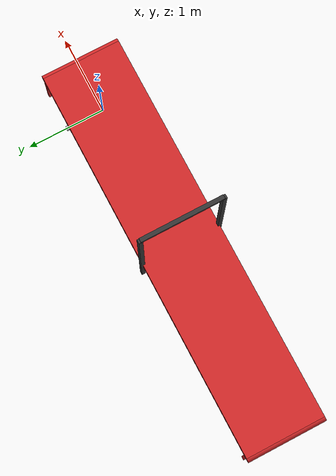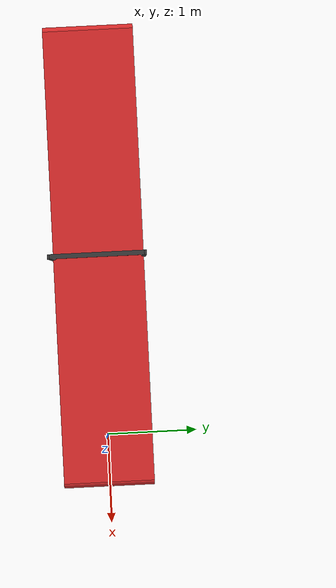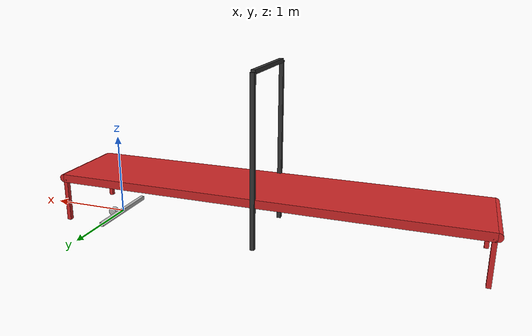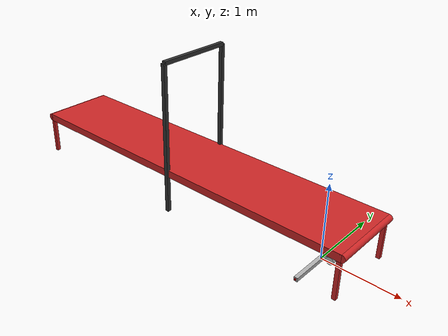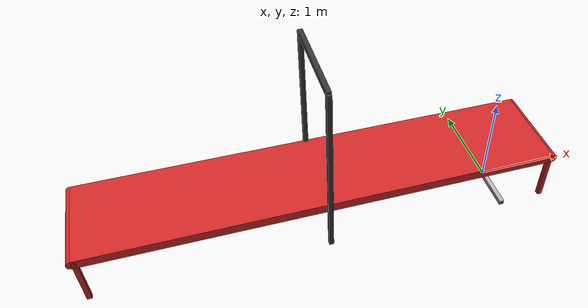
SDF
<sdf version="1.7">
 <world name="warehouse">
  <physics type="ode">
   <max_step_size>0.01</max_step_size>
   <real_time_factor>1.0</real_time_factor>
   <real_time_update_rate>100</real_time_update_rate>
   <max_contacts>20</max_contacts>
  </physics>
  <plugin name="gz::sim::systems::Physics" filename="gz-sim-physics-system"/>
  <plugin name="gz::sim::systems::UserCommands" filename="gz-sim-user-commands-system"/>
  <plugin name="gz::sim::systems::SceneBroadcaster" filename="gz-sim-scene-broadcaster-system"/>
  <plugin name="gz::sim::systems::Contact" filename="gz-sim-contact-system"/>
  <plugin name="gz::sim::systems::ApplyLinkWrench" filename="gz-sim-apply-link-wrench-system"/>
  <plugin name="gz::sim::systems::Sensors" filename="gz-sim-sensors-system">
   <render_engine>ogre2</render_engine>
   <background_color>0.8 0.8 0.8</background_color>
  </plugin>
  <gravity>0 0 -9.8</gravity>
  <scene>
   <ambient>1.0 1.0 1.0</ambient>
   <background>0.8 0.8 0.8</background>
   <shadows>true</shadows>
   <grid>false</grid>
  </scene>
  <light type="directional" name="sun">
   <pose>0 0 10 0 0 0</pose>
   <diffuse>0.8 0.8 0.8 1</diffuse>
   <specular>0.8 0.8 0.8 1</specular>
   <attenuation>
    <range>1000</range>
    <constant>0.9</constant>
    <linear>0.01</linear>
    <quadratic>0.001</quadratic>
   </attenuation>
   <direction>-0.5 0.1 -0.9</direction>
  </light>
  <include><uri>model://textured_conveyor</uri><pose>-2.0 0 0 0 0 0.0</pose></include>
  <include>
   <uri>model://bracket</uri>
   <name>bracket</name>
   <pose degrees="true">-2.0 0 0.0 0 0 90</pose>
   <static>true</static>
  </include>
  <include>
   <uri>model://lidar_3d</uri>
   <name>lidar_3d</name>
   <pose degrees="true" relative_to="bracket::horizontal_bar">0.1 0.1 0 90 0 0</pose>
   <static>false</static>
  </include>
  <joint name="bracket_lidar_joint" type="fixed">
   <parent>bracket::horizontal_bar</parent>
   <child>lidar_3d::link</child>
  </joint>
  <include>
   <uri>model://dual_camera_bar</uri>
   <name>dual_camera_bar</name>
   <pose degrees="true" relative_to="bracket::horizontal_bar">0 0 0 0 0 -90</pose>
   <static>false</static>
  </include>
  <joint name="bracket_to_dual_bar_joint" type="fixed">
   <parent>bracket::horizontal_bar</parent>
   <child>dual_camera_bar::horizontal_bar</child>
  </joint>
  <joint name="left_camera_joint" type="fixed">
   <parent>dual_camera_bar::left_camera_mount</parent>
   <child>left_camera::link</child>
  </joint>
  <joint name="right_camera_joint" type="fixed">
   <parent>dual_camera_bar::right_camera_mount</parent>
   <child>right_camera::link</child>
  </joint>
 </world>
</sdf>

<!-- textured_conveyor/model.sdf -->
<?xml version="1.0" ?>
<sdf version="1.7">
  <model name="textured_conveyor">
    <static>1</static>
    <link name="base_link">
      <pose relative_to="__model__">0 0 0 0 0 0</pose>
      <inertial>
        <mass>1000.0</mass>
        <inertia>
          <ixx>84.16666666666666</ixx>
          <ixy>0</ixy>
          <ixz>0</ixz>
          <iyy>2084.1666666666665</iyy>
          <iyz>1.5e-05</iyz>
          <izz>2166.6666666666665</izz>
        </inertia>
      </inertial>
      <collision name="main_collision">
        <pose relative_to="base_link">0 0 0.55 0 0 0</pose>
        <geometry>
          <box>
            <size>5.0 1.0 0.1</size>
          </box>
        </geometry>
        <surface>
          <friction>
            <ode>
              <mu>0.7</mu>
              <mu2>150</mu2>
              <fdir1>0 1 0</fdir1>
            </ode>
          </friction>
        </surface>
      </collision>
      <visual name="main_visual">
        <pose relative_to="base_link">0 0 0.55 0 0 0</pose>
        <geometry>
          <box>
            <size>5.0 1.0 0.1</size>
          </box>
        </geometry>
        <material>
          <diffuse>1.0 1.0 1.0</diffuse>
          <specular>1.0 1.0 1.0</specular>
          <pbr>
            <metal>
              <albedo_map>model://textured_conveyor/materials/textures/Leather032_1K-PNG_Color.png</albedo_map>
              <normal_map>model://textured_conveyor/materials/textures/Leather032_1K-PNG_NormalDX.png</normal_map>
              <metalness_map>model://textured_conveyor/materials/textures/Leather032_1K-PNG_Color.png</metalness_map>
              <roughness_map>model://textured_conveyor/materials/textures/Leather032_1K-PNG_Roughness.png</roughness_map>
            </metal>
          </pbr>
          <script>
            <uri>model://textured_conveyor/materials/scripts/</uri>
            <uri>model://textured_conveyor/materials/textures/</uri>
            <name>UrbanTile/textured_conveyor_Belt</name>
          </script>
        </material>
      </visual>
      <collision name="collision_1">
        <pose relative_to="base_link">2.5 0 0.55 -1.570796327 0 0</pose>
        <geometry>
          <cylinder>
            <length>1.0</length>
            <radius>0.05</radius>
          </cylinder>
        </geometry>
        <surface>
          <friction>
            <ode>
              <mu>0.7</mu>
              <mu2>150</mu2>
              <fdir1>0 1 0</fdir1>
            </ode>
          </friction>
        </surface>
      </collision>
      <visual name="visual_1">
        <pose relative_to="base_link">2.5 0 0.55 -1.570796327 0 0</pose>
        <geometry>
          <cylinder>
            <length>1.0</length>
            <radius>0.05</radius>
          </cylinder>
        </geometry>
        <material>
          <diffuse>1.0 1.0 1.0</diffuse>
          <specular>1.0 1.0 1.0</specular>
          <pbr>
            <metal>
              <albedo_map>model://textured_conveyor/materials/textures/Metal055A_1K-PNG_Color.png</albedo_map>
              <metalness_map>model://textured_conveyor/materials/textures/Metal055A_1K-PNG_Color.png</metalness_map>
              <roughness_map>model://textured_conveyor/materials/textures/Metal055A_1K-PNG_Roughness.png</roughness_map>
            </metal>
          </pbr>
          <script>
            <uri>model://textured_conveyor/materials/scripts/</uri>
            <uri>model://textured_conveyor/materials/textures/</uri>
            <name>UrbanTile/textured_conveyor_Roller</name>
          </script>
        </material>
      </visual>
      <collision name="collision_2">
        <pose relative_to="base_link">-2.5 0 0.55 -1.570796327 0 0</pose>
        <geometry>
          <cylinder>
            <length>1.0</length>
            <radius>0.05</radius>
          </cylinder>
        </geometry>
        <surface>
          <friction>
            <ode>
              <mu>0.7</mu>
              <mu2>150</mu2>
              <fdir1>0 1 0</fdir1>
            </ode>
          </friction>
        </surface>
      </collision>
      <visual name="visual_2">
        <pose relative_to="base_link">-2.5 0 0.55 -1.570796327 0 0</pose>
        <geometry>
          <cylinder>
            <length>1.0</length>
            <radius>0.05</radius>
          </cylinder>
        </geometry>
        <material>
          <diffuse>1.0 1.0 1.0</diffuse>
          <specular>1.0 1.0 1.0</specular>
          <pbr>
            <metal>
              <albedo_map>model://textured_conveyor/materials/textures/Metal055A_1K-PNG_Color.png</albedo_map>
              <metalness_map>model://textured_conveyor/materials/textures/Metal055A_1K-PNG_Color.png</metalness_map>
              <roughness_map>model://textured_conveyor/materials/textures/Metal055A_1K-PNG_Roughness.png</roughness_map>
            </metal>
          </pbr>
          <script>
            <uri>model://textured_conveyor/materials/scripts/</uri>
            <uri>model://textured_conveyor/materials/textures/</uri>
            <name>UrbanTile/textured_conveyor_Roller</name>
          </script>
        </material>
      </visual>
      <collision name="leg_collision_0">
        <pose relative_to="base_link">2.475 0.475 0.25 0 0 0</pose>
        <geometry>
          <box>
            <size>0.05 0.05 0.5</size>
          </box>
        </geometry>
      </collision>
      <visual name="leg_visual_0">
        <pose relative_to="base_link">2.475 0.475 0.25 0 0 0</pose>
        <geometry>
          <box>
            <size>0.05 0.05 0.5</size>
          </box>
        </geometry>
        <material>
          <diffuse>1.0 1.0 1.0</diffuse>
          <specular>1.0 1.0 1.0</specular>
          <pbr>
            <metal>
              <albedo_map>model://textured_conveyor/materials/textures/Metal055A_1K-PNG_Color.png</albedo_map>
              <metalness_map>model://textured_conveyor/materials/textures/Metal055A_1K-PNG_Color.png</metalness_map>
              <roughness_map>model://textured_conveyor/materials/textures/Metal055A_1K-PNG_Roughness.png</roughness_map>
            </metal>
          </pbr>
          <script>
            <uri>model://textured_conveyor/materials/scripts/</uri>
            <uri>model://textured_conveyor/materials/textures/</uri>
            <name>UrbanTile/textured_conveyor_Leg</name>
          </script>
        </material>
      </visual>
      <collision name="leg_collision_1">
        <pose relative_to="base_link">2.475 -0.475 0.25 0 0 0</pose>
        <geometry>
          <box>
            <size>0.05 0.05 0.5</size>
          </box>
        </geometry>
      </collision>
      <visual name="leg_visual_1">
        <pose relative_to="base_link">2.475 -0.475 0.25 0 0 0</pose>
        <geometry>
          <box>
            <size>0.05 0.05 0.5</size>
          </box>
        </geometry>
        <material>
          <diffuse>1.0 1.0 1.0</diffuse>
          <specular>1.0 1.0 1.0</specular>
          <pbr>
            <metal>
              <albedo_map>model://textured_conveyor/materials/textures/Metal055A_1K-PNG_Color.png</albedo_map>
              <metalness_map>model://textured_conveyor/materials/textures/Metal055A_1K-PNG_Color.png</metalness_map>
              <roughness_map>model://textured_conveyor/materials/textures/Metal055A_1K-PNG_Roughness.png</roughness_map>
            </metal>
          </pbr>
          <script>
            <uri>model://textured_conveyor/materials/scripts/</uri>
            <uri>model://textured_conveyor/materials/textures/</uri>
            <name>UrbanTile/textured_conveyor_Leg</name>
          </script>
        </material>
      </visual>
      <collision name="leg_collision_2">
        <pose relative_to="base_link">-2.475 0.475 0.25 0 0 0</pose>
        <geometry>
          <box>
            <size>0.05 0.05 0.5</size>
          </box>
        </geometry>
      </collision>
      <visual name="leg_visual_2">
        <pose relative_to="base_link">-2.475 0.475 0.25 0 0 0</pose>
        <geometry>
          <box>
            <size>0.05 0.05 0.5</size>
          </box>
        </geometry>
        <material>
          <diffuse>1.0 1.0 1.0</diffuse>
          <specular>1.0 1.0 1.0</specular>
          <pbr>
            <metal>
              <albedo_map>model://textured_conveyor/materials/textures/Metal055A_1K-PNG_Color.png</albedo_map>
              <metalness_map>model://textured_conveyor/materials/textures/Metal055A_1K-PNG_Color.png</metalness_map>
              <roughness_map>model://textured_conveyor/materials/textures/Metal055A_1K-PNG_Roughness.png</roughness_map>
            </metal>
          </pbr>
          <script>
            <uri>model://textured_conveyor/materials/scripts/</uri>
            <uri>model://textured_conveyor/materials/textures/</uri>
            <name>UrbanTile/textured_conveyor_Leg</name>
          </script>
        </material>
      </visual>
      <collision name="leg_collision_3">
        <pose relative_to="base_link">-2.475 -0.475 0.25 0 0 0</pose>
        <geometry>
          <box>
            <size>0.05 0.05 0.5</size>
          </box>
        </geometry>
      </collision>
      <visual name="leg_visual_3">
        <pose relative_to="base_link">-2.475 -0.475 0.25 0 0 0</pose>
        <geometry>
          <box>
            <size>0.05 0.05 0.5</size>
          </box>
        </geometry>
        <material>
          <diffuse>1.0 1.0 1.0</diffuse>
          <specular>1.0 1.0 1.0</specular>
          <pbr>
            <metal>
              <albedo_map>model://textured_conveyor/materials/textures/Metal055A_1K-PNG_Color.png</albedo_map>
              <metalness_map>model://textured_conveyor/materials/textures/Metal055A_1K-PNG_Color.png</metalness_map>
              <roughness_map>model://textured_conveyor/materials/textures/Metal055A_1K-PNG_Roughness.png</roughness_map>
            </metal>
          </pbr>
          <script>
            <uri>model://textured_conveyor/materials/scripts/</uri>
            <uri>model://textured_conveyor/materials/textures/</uri>
            <name>UrbanTile/textured_conveyor_Leg</name>
          </script>
        </material>
      </visual>
      <gravity>1</gravity>
      <kinematic>0</kinematic>
    </link>

    <!-- Track Controller -->

    <!-- Documentation https://gazebosim.org/api/sim/8/classgz_1_1sim_1_1systems_1_1TrackController.html -->

    <plugin filename="gz-sim-track-controller-system" name="gz::sim::systems::TrackController">
      <link>base_link</link>
      <track_orientation>0 0 0</track_orientation>
      <odometry_publish_frequency>1</odometry_publish_frequency>
      <velocity_topic>/conveyor/cmd_vel</velocity_topic>
    </plugin>
    <plugin filename="gz-sim-triggered-publisher-system" name="gz::sim::systems::TriggeredPublisher">
      <input type="gz.msgs.Int32" topic="/keyboard/keypress">
        <match field="data">87</match>
      </input>
      <output type="gz.msgs.Double" topic="/conveyor/cmd_vel">
        data: 1.0
      </output>
    </plugin>
    <plugin filename="gz-sim-triggered-publisher-system" name="gz::sim::systems::TriggeredPublisher">
      <input type="gz.msgs.Int32" topic="/keyboard/keypress">
        <match field="data">88</match>
      </input>
      <output type="gz.msgs.Double" topic="/conveyor/cmd_vel">
        data: -1.0
      </output>
    </plugin>
    <plugin filename="gz-sim-triggered-publisher-system" name="gz::sim::systems::TriggeredPublisher">
      <input type="gz.msgs.Int32" topic="/keyboard/keypress">
        <match field="data">83</match>
      </input>
      <output type="gz.msgs.Double" topic="/conveyor/cmd_vel">
        data: 0.0
      </output>
    </plugin>
  </model>
</sdf>

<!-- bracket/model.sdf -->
<sdf version="1.7">
  <model name="bracket">
    <!-- Horizontal connecting bar (now the parent) -->
    <link name="horizontal_bar">
      <pose>0 0 2.0 0 0 0</pose>
      <visual name="horizontal_bar_visual">
        <geometry>
          <box>
            <size>1.0 0.05 0.05</size>
          </box>
        </geometry>
        <material>
          <ambient>0.1 0.1 0.1 1</ambient>
          <diffuse>0.2 0.2 0.2 1</diffuse>
          <specular>0.3 0.3 0.3 1</specular>
        </material>
      </visual>
      <collision name="horizontal_bar_collision">
        <geometry>
          <box>
            <size>1.0 0.05 0.05</size>
          </box>
        </geometry>
      </collision>
      <inertial>
        <mass>0.5</mass>
        <inertia>
          <ixx>0.00104</ixx>
          <iyy>0.0417</iyy>
          <izz>0.0417</izz>
          <ixy>0</ixy>
          <ixz>0</ixz>
          <iyz>0</iyz>
        </inertia>
      </inertial>
    </link>

    <!-- Left vertical bar -->
    <link name="left_bar">
      <pose>-0.5 0 1.0 0 0 0</pose>
      <visual name="left_bar_visual">
        <geometry>
          <box>
            <size>0.05 0.05 2.0</size>
          </box>
        </geometry>
        <material>
          <ambient>0.1 0.1 0.1 1</ambient>
          <diffuse>0.2 0.2 0.2 1</diffuse>
          <specular>0.3 0.3 0.3 1</specular>
        </material>
      </visual>
      <collision name="left_bar_collision">
        <geometry>
          <box>
            <size>0.05 0.05 2.0</size>
          </box>
        </geometry>
      </collision>
      <inertial>
        <mass>1.0</mass>
        <inertia>
          <ixx>0.335</ixx>
          <iyy>0.335</iyy>
          <izz>0.00208</izz>
          <ixy>0</ixy>
          <ixz>0</ixz>
          <iyz>0</iyz>
        </inertia>
      </inertial>
    </link>

    <!-- Right vertical bar -->
    <link name="right_bar">
      <pose>0.5 0 1.0 0 0 0</pose>
      <visual name="right_bar_visual">
        <geometry>
          <box>
            <size>0.05 0.05 2.0</size>
          </box>
        </geometry>
        <material>
          <ambient>0.1 0.1 0.1 1</ambient>
          <diffuse>0.2 0.2 0.2 1</diffuse>
          <specular>0.3 0.3 0.3 1</specular>
        </material>
      </visual>
      <collision name="right_bar_collision">
        <geometry>
          <box>
            <size>0.05 0.05 2.0</size>
          </box>
        </geometry>
      </collision>
      <inertial>
        <mass>1.0</mass>
        <inertia>
          <ixx>0.335</ixx>
          <iyy>0.335</iyy>
          <izz>0.00208</izz>
          <ixy>0</ixy>
          <ixz>0</ixz>
          <iyz>0</iyz>
        </inertia>
      </inertial>
    </link>

    <!-- Joint between horizontal bar and left bar -->
    <joint name="horizontal_to_left_joint" type="fixed">
      <parent>horizontal_bar</parent>
      <child>left_bar</child>
      <pose>0 0 -1.0 0 0 0</pose>
    </joint>

    <!-- Joint between horizontal bar and right bar -->
    <joint name="horizontal_to_right_joint" type="fixed">
      <parent>horizontal_bar</parent>
      <child>right_bar</child>
      <pose>0 0 -1.0 0 0 0</pose>
    </joint>
  </model>
</sdf>

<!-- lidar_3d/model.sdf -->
<sdf version="1.6">
  <model name="lidar_3d">
    <link name="link">
      <pose>0 0 0 0 0 0</pose>
      <inertial>
        <pose>0 0 0.03585 0 0 0</pose>
        <mass>0.83</mass>
        <inertia>
          <ixx>0.0009080594249999999</ixx>
          <ixy>0</ixy>
          <ixz>0</ixz>
          <iyy>0.0009080594249999999</iyy>
          <iyz>0</iyz>
          <izz>0.0011049624</izz>
        </inertia>
      </inertial>
      <collision name="collision">
        <pose>0 0 0.03585 0 0 0</pose>
        <geometry>
          <cylinder>
            <radius>0.0516</radius>
            <length>0.0717</length>
          </cylinder>
        </geometry>
      </collision>
      <visual name="visual">
        <geometry>
          <mesh>
            <uri>model://lidar_3d/meshes/lidar_3d_v1.dae</uri>
          </mesh>
        </geometry>
      </visual>

      <sensor name='gpu_lidar' type='gpu_lidar'>"
        <topic>lidar</topic>
        <update_rate>10</update_rate>
        <enable_metrics>true</enable_metrics>
        <ray>
          <scan>
            <horizontal>
              <samples>720</samples>
              <resolution>0.01</resolution>
              <min_angle>-3.14159</min_angle>
              <max_angle>3.14159</max_angle>
            </horizontal>
            <vertical>
              <samples>50</samples>
              <min_angle>-0.122173</min_angle>
              <max_angle>0.907571</max_angle>
              <resolution>0.01</resolution>
            </vertical>
          </scan>
          <range>
            <min>0.08</min>
            <max>250.0</max>
            <resolution>0.01</resolution>
          </range>
        </ray>
        <visualize>true</visualize>
      </sensor>

    </link>
  </model>
</sdf>

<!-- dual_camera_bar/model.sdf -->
<sdf version="1.7">
  <model name="dual_camera_bar">
    <static>false</static>

    <!-- Main horizontal bar -->
    <link name="horizontal_bar">
      <pose>0 0 0 0 0 0</pose>
      <inertial>
        <mass>1.0</mass>
        <inertia>
          <ixx>0.01</ixx>
          <iyy>0.083</iyy>
          <izz>0.083</izz>
          <ixy>0</ixy>
          <ixz>0</ixz>
          <iyz>0</iyz>
        </inertia>
      </inertial>

      <collision name="collision">
        <geometry>
          <box>
            <size>1.0 0.05 0.05</size>
          </box>
        </geometry>
      </collision>

      <visual name="visual">
        <geometry>
          <box>
            <size>1.0 0.05 0.05</size>
          </box>
        </geometry>
        <material>
          <ambient>0.3 0.3 0.3 1</ambient>
          <diffuse>0.7 0.7 0.7 1</diffuse>
          <specular>1 1 1 1</specular>
        </material>
      </visual>
    </link>

    <!-- Left camera mount point (will be connected to a camera in the world file) -->
    <link name="left_camera_mount">
      <pose relative_to="horizontal_bar">-0.5 0 0 0 0 0</pose>
      <inertial>
        <mass>0.1</mass>
        <inertia>
          <ixx>0.001</ixx>
          <iyy>0.001</iyy>
          <izz>0.001</izz>
          <ixy>0</ixy>
          <ixz>0</ixz>
          <iyz>0</iyz>
        </inertia>
      </inertial>

      <collision name="collision">
        <geometry>
          <box>
            <size>0.02 0.02 0.02</size>
          </box>
        </geometry>
      </collision>

      <visual name="visual">
        <geometry>
          <box>
            <size>0.02 0.02 0.02</size>
          </box>
        </geometry>
        <material>
          <ambient>1 0 0 1</ambient>
          <diffuse>1 0 0 1</diffuse>
        </material>
      </visual>
    </link>

    <!-- Right camera mount point (will be connected to a camera in the world file) -->
    <link name="right_camera_mount">
      <pose relative_to="horizontal_bar">0.5 0 0 0 0 0</pose>
      <inertial>
        <mass>0.1</mass>
        <inertia>
          <ixx>0.001</ixx>
          <iyy>0.001</iyy>
          <izz>0.001</izz>
          <ixy>0</ixy>
          <ixz>0</ixz>
          <iyz>0</iyz>
        </inertia>
      </inertial>

      <collision name="collision">
        <geometry>
          <box>
            <size>0.02 0.02 0.02</size>
          </box>
        </geometry>
      </collision>

      <visual name="visual">
        <geometry>
          <box>
            <size>0.02 0.02 0.02</size>
          </box>
        </geometry>
        <material>
          <ambient>1 0 0 1</ambient>
          <diffuse>1 0 0 1</diffuse>
        </material>
      </visual>
    </link>

    <!-- Fixed joints between the bar and camera mount points -->
    <joint name="left_mount_joint" type="fixed">
      <parent>horizontal_bar</parent>
      <child>left_camera_mount</child>
    </joint>

    <joint name="right_mount_joint" type="fixed">
      <parent>horizontal_bar</parent>
      <child>right_camera_mount</child>
    </joint>
  </model>
</sdf>
